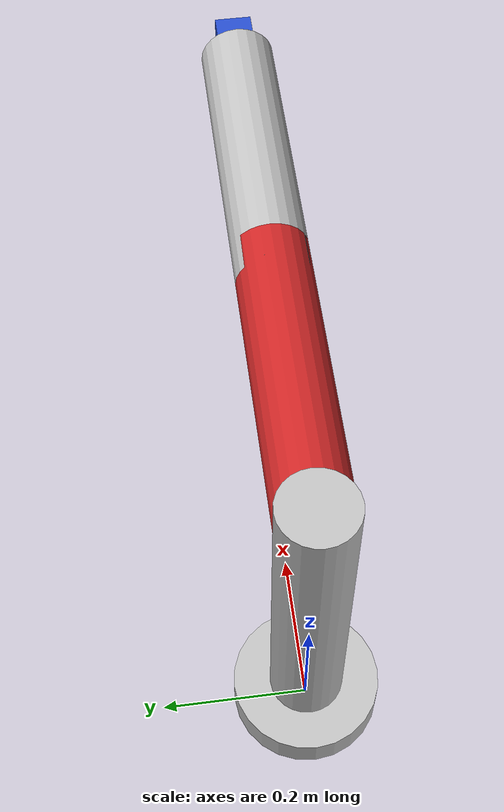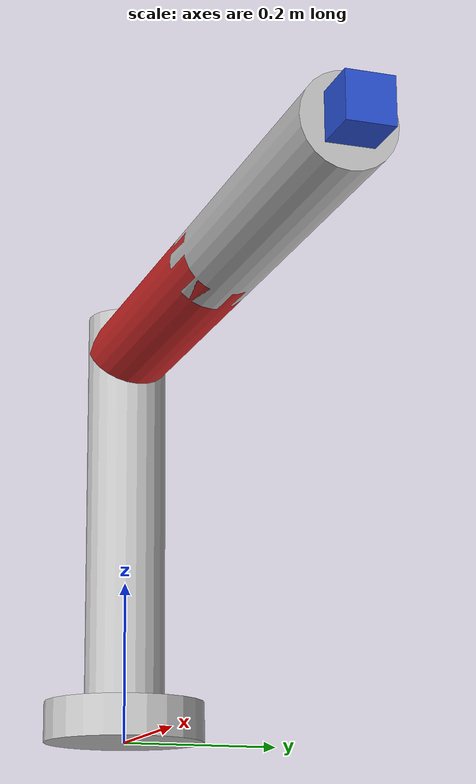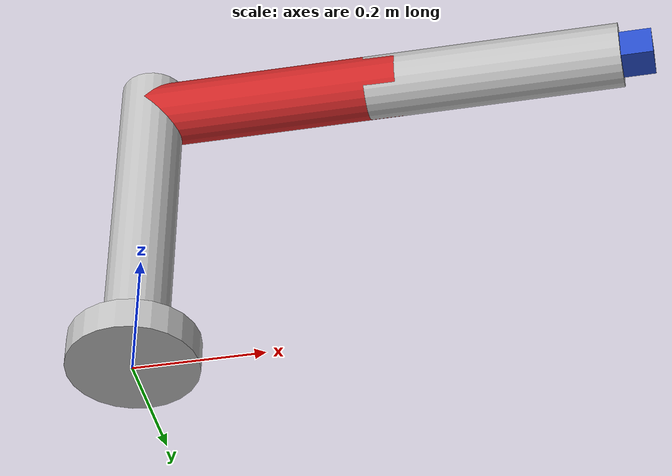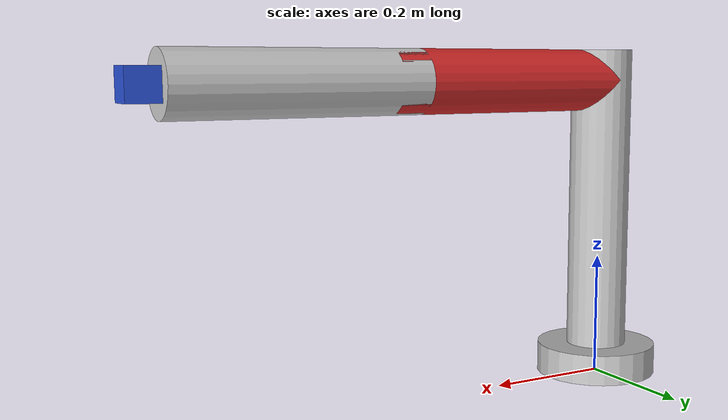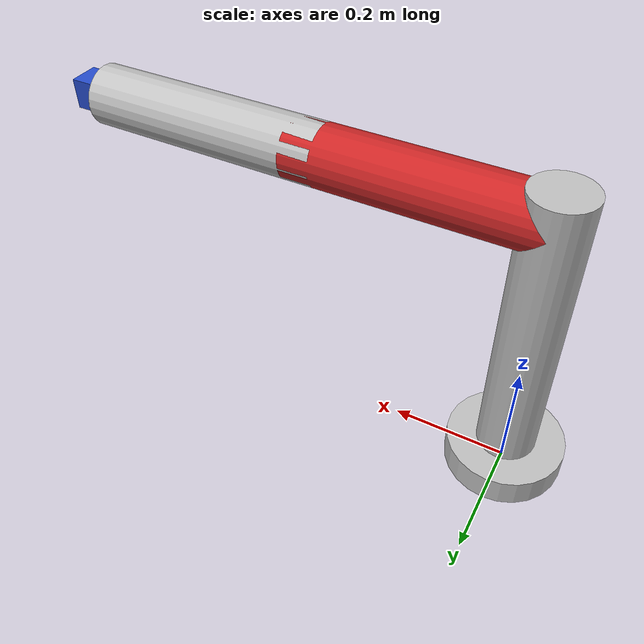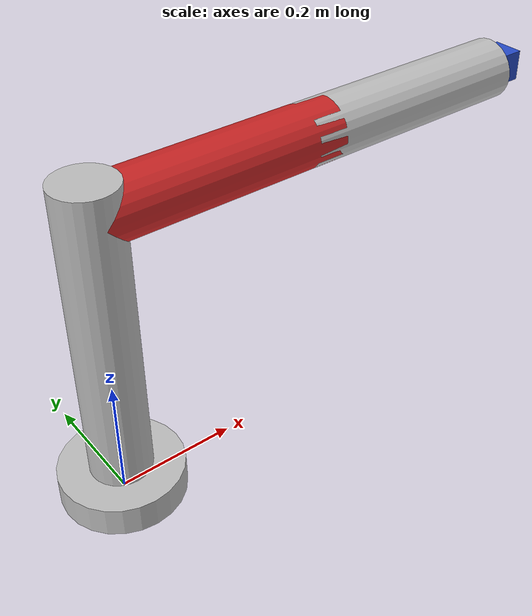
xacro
<?xml version="1.0" ?>
<robot name="team11_bot">
    <link name="world" />
    <link name="base_link">
        <visual>
            <geometry>
                <cylinder length="0.05" radius="0.1" />
            </geometry>
            <material name="silver">
                <color rgba="0.75 0.75 0.75 1" />
            </material>
            <origin rpy="0 0 0" xyz="0 0 0.025" />
        </visual>
        <collision>
            <geometry>
                <cylinder length="0.05" radius="0.1" />
            </geometry>
            <origin rpy="0 0 0" xyz="0 0 0.025" />
        </collision>

<inertial>
            <mass value="0.1" />
            <inertia ixx="0.03" iyy="0.03" izz="0.03" ixy="0.0" ixz="0.0" iyz="0.0" />
        </inertial>

    </link>
    <joint name="fixed" type="fixed">
        <parent link="world" />
        <child link="base_link" />
    </joint>
    <link name="torso">
        <visual>
            <geometry>
                <cylinder length="0.5" radius="0.05" />
            </geometry>
            <material name="silver">
                <color rgba="0.75 0.75 0.75 1" />
            </material>
            <origin rpy="0 0 0" xyz="0 0 0.25" />
        </visual>
        <collision>
            <geometry>
                <cylinder length="0.5" radius="0.05" />
            </geometry>
            <origin rpy="0 0 0" xyz="0 0 0.25" />
        </collision>

<inertial>
            <mass value="0.1" />
            <inertia ixx="0.03" iyy="0.03" izz="0.03" ixy="0.0" ixz="0.0" iyz="0.0" />
        </inertial>

    </link>
    <joint name="hip" type="continuous">
        <axis xyz="0 0 1" />
        <parent link="base_link" />
        <child link="torso" />
        <origin rpy="0 0 0" xyz="0.0 0.0 0.05" />
    </joint>
    <link name="upper_arm">
        <visual>
            <geometry>
                <cylinder length="0.4" radius="0.05" />
            </geometry>
            <material name="red" />
            <origin rpy="0 0 0" xyz="0 0 0.2" />
        </visual>
        <collision>
            <geometry>
                <cylinder length="0.4" radius="0.05" />
            </geometry>
            <origin rpy="0 0 0" xyz="0 0 0.2" />
        </collision>

<inertial>
            <mass value="0.1" />
            <inertia ixx="0.03" iyy="0.03" izz="0.03" ixy="0.0" ixz="0.0" iyz="0.0" />
        </inertial>

    </link>
    <joint name="shoulder" type="continuous">
        <axis xyz="0 1 0" />
        <parent link="torso" />
        <child link="upper_arm" />
        <origin rpy="0 1.5708 0" xyz="0.0 0.0 0.45" />
    </joint>
    <link name="lower_arm">
        <visual>
            <geometry>
                <cylinder length="0.4" radius="0.05" />
            </geometry>
            <material name="silver" />
            <origin rpy="0 0 0" xyz="0 0 0.2" />
        </visual>
        <collision>
            <geometry>
                <cylinder length="0.4" radius="0.05" />
            </geometry>
            <origin rpy="0 0 0" xyz="0 0 0.2" />
        </collision>

<inertial>
            <mass value="0.1" />
            <inertia ixx="0.03" iyy="0.03" izz="0.03" ixy="0.0" ixz="0.0" iyz="0.0" />
        </inertial>

    </link>
    <joint name="elbow" type="continuous">
        <axis xyz="0 1 0" />
        <parent link="upper_arm" />
        <child link="lower_arm" />
        <origin rpy="0 0 0" xyz="0.0 0.0 0.35" />
    </joint>
    <link name="hand">
        <visual>
            <geometry>
                <box size="0.05 0.05 0.05" />
            </geometry>
            <material name="blue" />
        </visual>
        <collision>
            <geometry>
                <box size="0.05 0.05 0.05" />
            </geometry>
        </collision>

<inertial>
            <mass value="0.1" />
            <inertia ixx="0.03" iyy="0.03" izz="0.03" ixy="0.0" ixz="0.0" iyz="0.0" />
        </inertial>

    </link>
    <joint name="wrist" type="continuous">
        <axis xyz="0 1 0" />
        <parent link="lower_arm" />
        <child link="hand" />
        <origin rpy="0 0 0" xyz="0.0 0.0 0.425" />
    </joint>

    <transmission name="trans_hip">
        <type>transmission_interface/SimpleTransmission</type>
        <joint name="hip">
            <hardwareInterface>hardware_interface/PositionJointInterface</hardwareInterface>
        </joint>
        <actuator name="hip_motor">
            <hardwareInterface>hardware_interface/PositionJointInterface</hardwareInterface>
            <mechanicalReduction>1</mechanicalReduction>
        </actuator>
    </transmission>
    <transmission name="trans_shoulder">
        <type>transmission_interface/SimpleTransmission</type>
        <joint name="shoulder">
            <hardwareInterface>hardware_interface/PositionJointInterface</hardwareInterface>
        </joint>
        <actuator name="shoulder_motor">
            <hardwareInterface>hardware_interface/PositionJointInterface</hardwareInterface>
            <mechanicalReduction>1</mechanicalReduction>
        </actuator>
    </transmission>
    <transmission name="trans_elbow">
        <type>transmission_interface/SimpleTransmission</type>
        <joint name="elbow">
            <hardwareInterface>hardware_interface/PositionJointInterface</hardwareInterface>
        </joint>
        <actuator name="elbow_motor">
            <hardwareInterface>hardware_interface/PositionJointInterface</hardwareInterface>
            <mechanicalReduction>1</mechanicalReduction>
        </actuator>
    </transmission>
    <transmission name="trans_wrist">
        <type>transmission_interface/SimpleTransmission</type>
        <joint name="wrist">
            <hardwareInterface>hardware_interface/PositionJointInterface</hardwareInterface>
        </joint>
        <actuator name="wrist_motor">
            <hardwareInterface>hardware_interface/PositionJointInterface</hardwareInterface>
            <mechanicalReduction>1</mechanicalReduction>
        </actuator>
    </transmission>

    <gazebo>
        <plugin name="gazebo_grasp_fix" filename="libgazebo_grasp_fix.so">
            <arm>
                <arm_name>arm</arm_name>
                <palm_link>hand</palm_link>

            </arm>
            <forces_angle_tolerance>100</forces_angle_tolerance>
            <update_rate>4</update_rate>
            <grip_count_threshold>4</grip_count_threshold>
            <max_grip_count>8</max_grip_count>
            <release_tolerance>0.005</release_tolerance>
            <disable_collisions_on_attatch>false</disable_collisions_on_attatch>
            <contact_topic>_default_topic_</contact_topic>
        </plugin>
    </gazebo>

    <gazebo>
        <plugin name="gazebo_ros_control" filename="libgazebo_ros_control.so">
            <robotNamespace>/</robotNamespace>
        </plugin>
    </gazebo>
    <gazebo>
        <plugin name="joint_state_publisher" filename="libgazebo_ros_joint_state_publisher.so">
            <jointName>hip, shoulder, elbow, wrist</jointName>
        </plugin>
    </gazebo>
</robot>
